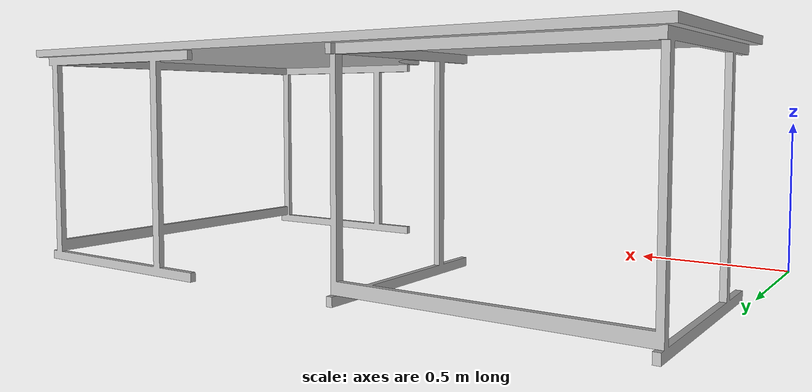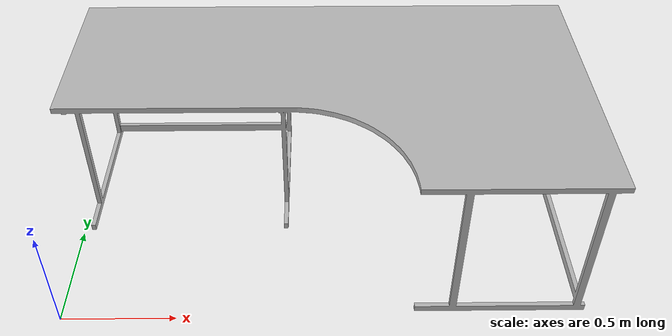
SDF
<?xml version="1.0"?>
<sdf version="1.4">
<model name="stul_l_pravy">
	<pose>0 0 0 0 0 0</pose>
	<static>true</static>
	<link name="stul_l_pravy_collision">
		<collision name="stul_l_pravy_collision">
		<geometry>
			<mesh>
				<uri>model://stul_l_pravy/meshes/model.dae</uri>

			</mesh>
		</geometry>
		</collision>
	<visual name="stul_l_pravy_mesh">
	<cast_shadows>false</cast_shadows>
		<geometry>
			<mesh>
				<uri> model://stul_l_pravy/meshes/model.dae</uri>

			</mesh>
		</geometry>
		<material>
		<script>
			<uri> model://stul_l_pravy/material/scripts</uri>
			<uri> model://stul_l_pravy/material/textures</uri>
			<name>stul_l_pravy/Diffuse</name>
		</script>
		</material>

	</visual>
</link>
</model>
</sdf>
